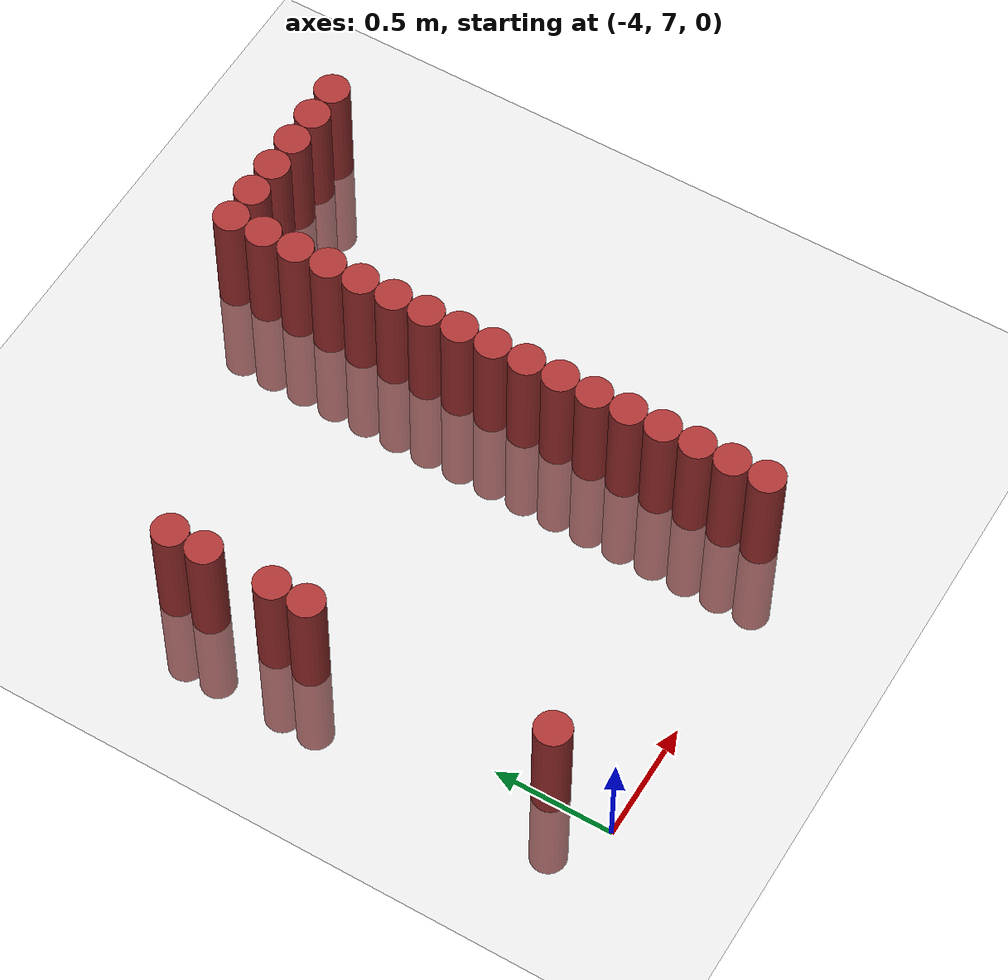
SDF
<sdf version="1.6">
 <world name="default">
  <model name="ground_plane">
   <static>1</static>
   <link name="link">
    <collision name="collision">
     <geometry><plane><normal>0 0 1</normal><size>100 100</size></plane></geometry>
     <surface><friction><ode><mu>100</mu><mu2>50</mu2></ode></friction></surface>
    </collision>
    <visual name="visual">
     <cast_shadows>0</cast_shadows>
     <geometry><plane><normal>0 0 1</normal><size>100 100</size></plane></geometry>
     <material>
      <script><uri>file://media/materials/scripts/gazebo.material</uri><name>Gazebo/Grey</name></script>
     </material>
    </visual>
   </link>
  </model>
  <model name="unit_cylinder_267">
   <static>1</static>
   <pose>-3.975000 7.275000 0.000000 0.000000 0.000000 0.000000</pose>
   <link name="link">
    <inertial>
     <mass>1</mass>
     <inertia><ixx>0.145833</ixx><ixy>0</ixy><ixz>0</ixz><iyy>0.145833</iyy><iyz>0</iyz><izz>0.125</izz></inertia>
    </inertial>
    <collision name="collision">
     <geometry><cylinder><radius>0.075000</radius><length>1</length></cylinder></geometry>
    </collision>
    <visual name="visual">
     <geometry><cylinder><radius>0.075000</radius><length>1</length></cylinder></geometry>
     <material>
      <ambient>0.648000 0.192000 0.192000 1</ambient>
      <diffuse>0.648000 0.192000 0.192000 1</diffuse>
     </material>
     <material>
      <script><name>Gazebo/Grey</name><uri>file://media/materials/scripts/gazebo.material</uri></script>
     </material>
    </visual>
   </link>
  </model>
  <model name="unit_cylinder_268">
   <static>1</static>
   <pose>-3.975000 8.325000 0.000000 0.000000 0.000000 0.000000</pose>
   <link name="link">
    <inertial>
     <mass>1</mass>
     <inertia><ixx>0.145833</ixx><ixy>0</ixy><ixz>0</ixz><iyy>0.145833</iyy><iyz>0</iyz><izz>0.125</izz></inertia>
    </inertial>
    <collision name="collision">
     <geometry><cylinder><radius>0.075000</radius><length>1</length></cylinder></geometry>
    </collision>
    <visual name="visual">
     <geometry><cylinder><radius>0.075000</radius><length>1</length></cylinder></geometry>
     <material>
      <ambient>0.648000 0.192000 0.192000 1</ambient>
      <diffuse>0.648000 0.192000 0.192000 1</diffuse>
     </material>
     <material>
      <script><name>Gazebo/Grey</name><uri>file://media/materials/scripts/gazebo.material</uri></script>
     </material>
    </visual>
   </link>
  </model>
  <model name="unit_cylinder_269">
   <static>1</static>
   <pose>-3.975000 8.475000 0.000000 0.000000 0.000000 0.000000</pose>
   <link name="link">
    <inertial>
     <mass>1</mass>
     <inertia><ixx>0.145833</ixx><ixy>0</ixy><ixz>0</ixz><iyy>0.145833</iyy><iyz>0</iyz><izz>0.125</izz></inertia>
    </inertial>
    <collision name="collision">
     <geometry><cylinder><radius>0.075000</radius><length>1</length></cylinder></geometry>
    </collision>
    <visual name="visual">
     <geometry><cylinder><radius>0.075000</radius><length>1</length></cylinder></geometry>
     <material>
      <ambient>0.648000 0.192000 0.192000 1</ambient>
      <diffuse>0.648000 0.192000 0.192000 1</diffuse>
     </material>
     <material>
      <script><name>Gazebo/Grey</name><uri>file://media/materials/scripts/gazebo.material</uri></script>
     </material>
    </visual>
   </link>
  </model>
  <model name="unit_cylinder_270">
   <static>1</static>
   <pose>-3.975000 8.775000 0.000000 0.000000 0.000000 0.000000</pose>
   <link name="link">
    <inertial>
     <mass>1</mass>
     <inertia><ixx>0.145833</ixx><ixy>0</ixy><ixz>0</ixz><iyy>0.145833</iyy><iyz>0</iyz><izz>0.125</izz></inertia>
    </inertial>
    <collision name="collision">
     <geometry><cylinder><radius>0.075000</radius><length>1</length></cylinder></geometry>
    </collision>
    <visual name="visual">
     <geometry><cylinder><radius>0.075000</radius><length>1</length></cylinder></geometry>
     <material>
      <ambient>0.648000 0.192000 0.192000 1</ambient>
      <diffuse>0.648000 0.192000 0.192000 1</diffuse>
     </material>
     <material>
      <script><name>Gazebo/Grey</name><uri>file://media/materials/scripts/gazebo.material</uri></script>
     </material>
    </visual>
   </link>
  </model>
  <model name="unit_cylinder_271">
   <static>1</static>
   <pose>-3.975000 8.925000 0.000000 0.000000 0.000000 0.000000</pose>
   <link name="link">
    <inertial>
     <mass>1</mass>
     <inertia><ixx>0.145833</ixx><ixy>0</ixy><ixz>0</ixz><iyy>0.145833</iyy><iyz>0</iyz><izz>0.125</izz></inertia>
    </inertial>
    <collision name="collision">
     <geometry><cylinder><radius>0.075000</radius><length>1</length></cylinder></geometry>
    </collision>
    <visual name="visual">
     <geometry><cylinder><radius>0.075000</radius><length>1</length></cylinder></geometry>
     <material>
      <ambient>0.648000 0.192000 0.192000 1</ambient>
      <diffuse>0.648000 0.192000 0.192000 1</diffuse>
     </material>
     <material>
      <script><name>Gazebo/Grey</name><uri>file://media/materials/scripts/gazebo.material</uri></script>
     </material>
    </visual>
   </link>
  </model>
  <model name="unit_cylinder_301">
   <static>1</static>
   <pose>-2.625000 7.125000 0.000000 0.000000 0.000000 0.000000</pose>
   <link name="link">
    <inertial>
     <mass>1</mass>
     <inertia><ixx>0.145833</ixx><ixy>0</ixy><ixz>0</ixz><iyy>0.145833</iyy><iyz>0</iyz><izz>0.125</izz></inertia>
    </inertial>
    <collision name="collision">
     <geometry><cylinder><radius>0.075000</radius><length>1</length></cylinder></geometry>
    </collision>
    <visual name="visual">
     <geometry><cylinder><radius>0.075000</radius><length>1</length></cylinder></geometry>
     <material>
      <ambient>0.648000 0.192000 0.192000 1</ambient>
      <diffuse>0.648000 0.192000 0.192000 1</diffuse>
     </material>
     <material>
      <script><name>Gazebo/Grey</name><uri>file://media/materials/scripts/gazebo.material</uri></script>
     </material>
    </visual>
   </link>
  </model>
  <model name="unit_cylinder_302">
   <static>1</static>
   <pose>-2.625000 7.275000 0.000000 0.000000 0.000000 0.000000</pose>
   <link name="link">
    <inertial>
     <mass>1</mass>
     <inertia><ixx>0.145833</ixx><ixy>0</ixy><ixz>0</ixz><iyy>0.145833</iyy><iyz>0</iyz><izz>0.125</izz></inertia>
    </inertial>
    <collision name="collision">
     <geometry><cylinder><radius>0.075000</radius><length>1</length></cylinder></geometry>
    </collision>
    <visual name="visual">
     <geometry><cylinder><radius>0.075000</radius><length>1</length></cylinder></geometry>
     <material>
      <ambient>0.648000 0.192000 0.192000 1</ambient>
      <diffuse>0.648000 0.192000 0.192000 1</diffuse>
     </material>
     <material>
      <script><name>Gazebo/Grey</name><uri>file://media/materials/scripts/gazebo.material</uri></script>
     </material>
    </visual>
   </link>
  </model>
  <model name="unit_cylinder_303">
   <static>1</static>
   <pose>-2.625000 7.425000 0.000000 0.000000 0.000000 0.000000</pose>
   <link name="link">
    <inertial>
     <mass>1</mass>
     <inertia><ixx>0.145833</ixx><ixy>0</ixy><ixz>0</ixz><iyy>0.145833</iyy><iyz>0</iyz><izz>0.125</izz></inertia>
    </inertial>
    <collision name="collision">
     <geometry><cylinder><radius>0.075000</radius><length>1</length></cylinder></geometry>
    </collision>
    <visual name="visual">
     <geometry><cylinder><radius>0.075000</radius><length>1</length></cylinder></geometry>
     <material>
      <ambient>0.648000 0.192000 0.192000 1</ambient>
      <diffuse>0.648000 0.192000 0.192000 1</diffuse>
     </material>
     <material>
      <script><name>Gazebo/Grey</name><uri>file://media/materials/scripts/gazebo.material</uri></script>
     </material>
    </visual>
   </link>
  </model>
  <model name="unit_cylinder_304">
   <static>1</static>
   <pose>-2.625000 7.575000 0.000000 0.000000 0.000000 0.000000</pose>
   <link name="link">
    <inertial>
     <mass>1</mass>
     <inertia><ixx>0.145833</ixx><ixy>0</ixy><ixz>0</ixz><iyy>0.145833</iyy><iyz>0</iyz><izz>0.125</izz></inertia>
    </inertial>
    <collision name="collision">
     <geometry><cylinder><radius>0.075000</radius><length>1</length></cylinder></geometry>
    </collision>
    <visual name="visual">
     <geometry><cylinder><radius>0.075000</radius><length>1</length></cylinder></geometry>
     <material>
      <ambient>0.648000 0.192000 0.192000 1</ambient>
      <diffuse>0.648000 0.192000 0.192000 1</diffuse>
     </material>
     <material>
      <script><name>Gazebo/Grey</name><uri>file://media/materials/scripts/gazebo.material</uri></script>
     </material>
    </visual>
   </link>
  </model>
  <model name="unit_cylinder_305">
   <static>1</static>
   <pose>-2.625000 7.725000 0.000000 0.000000 0.000000 0.000000</pose>
   <link name="link">
    <inertial>
     <mass>1</mass>
     <inertia><ixx>0.145833</ixx><ixy>0</ixy><ixz>0</ixz><iyy>0.145833</iyy><iyz>0</iyz><izz>0.125</izz></inertia>
    </inertial>
    <collision name="collision">
     <geometry><cylinder><radius>0.075000</radius><length>1</length></cylinder></geometry>
    </collision>
    <visual name="visual">
     <geometry><cylinder><radius>0.075000</radius><length>1</length></cylinder></geometry>
     <material>
      <ambient>0.648000 0.192000 0.192000 1</ambient>
      <diffuse>0.648000 0.192000 0.192000 1</diffuse>
     </material>
     <material>
      <script><name>Gazebo/Grey</name><uri>file://media/materials/scripts/gazebo.material</uri></script>
     </material>
    </visual>
   </link>
  </model>
  <model name="unit_cylinder_306">
   <static>1</static>
   <pose>-2.625000 7.875000 0.000000 0.000000 0.000000 0.000000</pose>
   <link name="link">
    <inertial>
     <mass>1</mass>
     <inertia><ixx>0.145833</ixx><ixy>0</ixy><ixz>0</ixz><iyy>0.145833</iyy><iyz>0</iyz><izz>0.125</izz></inertia>
    </inertial>
    <collision name="collision">
     <geometry><cylinder><radius>0.075000</radius><length>1</length></cylinder></geometry>
    </collision>
    <visual name="visual">
     <geometry><cylinder><radius>0.075000</radius><length>1</length></cylinder></geometry>
     <material>
      <ambient>0.648000 0.192000 0.192000 1</ambient>
      <diffuse>0.648000 0.192000 0.192000 1</diffuse>
     </material>
     <material>
      <script><name>Gazebo/Grey</name><uri>file://media/materials/scripts/gazebo.material</uri></script>
     </material>
    </visual>
   </link>
  </model>
  <model name="unit_cylinder_307">
   <static>1</static>
   <pose>-2.625000 8.025000 0.000000 0.000000 0.000000 0.000000</pose>
   <link name="link">
    <inertial>
     <mass>1</mass>
     <inertia><ixx>0.145833</ixx><ixy>0</ixy><ixz>0</ixz><iyy>0.145833</iyy><iyz>0</iyz><izz>0.125</izz></inertia>
    </inertial>
    <collision name="collision">
     <geometry><cylinder><radius>0.075000</radius><length>1</length></cylinder></geometry>
    </collision>
    <visual name="visual">
     <geometry><cylinder><radius>0.075000</radius><length>1</length></cylinder></geometry>
     <material>
      <ambient>0.648000 0.192000 0.192000 1</ambient>
      <diffuse>0.648000 0.192000 0.192000 1</diffuse>
     </material>
     <material>
      <script><name>Gazebo/Grey</name><uri>file://media/materials/scripts/gazebo.material</uri></script>
     </material>
    </visual>
   </link>
  </model>
  <model name="unit_cylinder_308">
   <static>1</static>
   <pose>-2.625000 8.175000 0.000000 0.000000 0.000000 0.000000</pose>
   <link name="link">
    <inertial>
     <mass>1</mass>
     <inertia><ixx>0.145833</ixx><ixy>0</ixy><ixz>0</ixz><iyy>0.145833</iyy><iyz>0</iyz><izz>0.125</izz></inertia>
    </inertial>
    <collision name="collision">
     <geometry><cylinder><radius>0.075000</radius><length>1</length></cylinder></geometry>
    </collision>
    <visual name="visual">
     <geometry><cylinder><radius>0.075000</radius><length>1</length></cylinder></geometry>
     <material>
      <ambient>0.648000 0.192000 0.192000 1</ambient>
      <diffuse>0.648000 0.192000 0.192000 1</diffuse>
     </material>
     <material>
      <script><name>Gazebo/Grey</name><uri>file://media/materials/scripts/gazebo.material</uri></script>
     </material>
    </visual>
   </link>
  </model>
  <model name="unit_cylinder_309">
   <static>1</static>
   <pose>-2.625000 8.325000 0.000000 0.000000 0.000000 0.000000</pose>
   <link name="link">
    <inertial>
     <mass>1</mass>
     <inertia><ixx>0.145833</ixx><ixy>0</ixy><ixz>0</ixz><iyy>0.145833</iyy><iyz>0</iyz><izz>0.125</izz></inertia>
    </inertial>
    <collision name="collision">
     <geometry><cylinder><radius>0.075000</radius><length>1</length></cylinder></geometry>
    </collision>
    <visual name="visual">
     <geometry><cylinder><radius>0.075000</radius><length>1</length></cylinder></geometry>
     <material>
      <ambient>0.648000 0.192000 0.192000 1</ambient>
      <diffuse>0.648000 0.192000 0.192000 1</diffuse>
     </material>
     <material>
      <script><name>Gazebo/Grey</name><uri>file://media/materials/scripts/gazebo.material</uri></script>
     </material>
    </visual>
   </link>
  </model>
  <model name="unit_cylinder_310">
   <static>1</static>
   <pose>-2.625000 8.475000 0.000000 0.000000 0.000000 0.000000</pose>
   <link name="link">
    <inertial>
     <mass>1</mass>
     <inertia><ixx>0.145833</ixx><ixy>0</ixy><ixz>0</ixz><iyy>0.145833</iyy><iyz>0</iyz><izz>0.125</izz></inertia>
    </inertial>
    <collision name="collision">
     <geometry><cylinder><radius>0.075000</radius><length>1</length></cylinder></geometry>
    </collision>
    <visual name="visual">
     <geometry><cylinder><radius>0.075000</radius><length>1</length></cylinder></geometry>
     <material>
      <ambient>0.648000 0.192000 0.192000 1</ambient>
      <diffuse>0.648000 0.192000 0.192000 1</diffuse>
     </material>
     <material>
      <script><name>Gazebo/Grey</name><uri>file://media/materials/scripts/gazebo.material</uri></script>
     </material>
    </visual>
   </link>
  </model>
  <model name="unit_cylinder_311">
   <static>1</static>
   <pose>-2.625000 8.625000 0.000000 0.000000 0.000000 0.000000</pose>
   <link name="link">
    <inertial>
     <mass>1</mass>
     <inertia><ixx>0.145833</ixx><ixy>0</ixy><ixz>0</ixz><iyy>0.145833</iyy><iyz>0</iyz><izz>0.125</izz></inertia>
    </inertial>
    <collision name="collision">
     <geometry><cylinder><radius>0.075000</radius><length>1</length></cylinder></geometry>
    </collision>
    <visual name="visual">
     <geometry><cylinder><radius>0.075000</radius><length>1</length></cylinder></geometry>
     <material>
      <ambient>0.648000 0.192000 0.192000 1</ambient>
      <diffuse>0.648000 0.192000 0.192000 1</diffuse>
     </material>
     <material>
      <script><name>Gazebo/Grey</name><uri>file://media/materials/scripts/gazebo.material</uri></script>
     </material>
    </visual>
   </link>
  </model>
  <model name="unit_cylinder_312">
   <static>1</static>
   <pose>-2.625000 8.775000 0.000000 0.000000 0.000000 0.000000</pose>
   <link name="link">
    <inertial>
     <mass>1</mass>
     <inertia><ixx>0.145833</ixx><ixy>0</ixy><ixz>0</ixz><iyy>0.145833</iyy><iyz>0</iyz><izz>0.125</izz></inertia>
    </inertial>
    <collision name="collision">
     <geometry><cylinder><radius>0.075000</radius><length>1</length></cylinder></geometry>
    </collision>
    <visual name="visual">
     <geometry><cylinder><radius>0.075000</radius><length>1</length></cylinder></geometry>
     <material>
      <ambient>0.648000 0.192000 0.192000 1</ambient>
      <diffuse>0.648000 0.192000 0.192000 1</diffuse>
     </material>
     <material>
      <script><name>Gazebo/Grey</name><uri>file://media/materials/scripts/gazebo.material</uri></script>
     </material>
    </visual>
   </link>
  </model>
  <model name="unit_cylinder_313">
   <static>1</static>
   <pose>-2.625000 8.925000 0.000000 0.000000 0.000000 0.000000</pose>
   <link name="link">
    <inertial>
     <mass>1</mass>
     <inertia><ixx>0.145833</ixx><ixy>0</ixy><ixz>0</ixz><iyy>0.145833</iyy><iyz>0</iyz><izz>0.125</izz></inertia>
    </inertial>
    <collision name="collision">
     <geometry><cylinder><radius>0.075000</radius><length>1</length></cylinder></geometry>
    </collision>
    <visual name="visual">
     <geometry><cylinder><radius>0.075000</radius><length>1</length></cylinder></geometry>
     <material>
      <ambient>0.648000 0.192000 0.192000 1</ambient>
      <diffuse>0.648000 0.192000 0.192000 1</diffuse>
     </material>
     <material>
      <script><name>Gazebo/Grey</name><uri>file://media/materials/scripts/gazebo.material</uri></script>
     </material>
    </visual>
   </link>
  </model>
  <model name="unit_cylinder_314">
   <static>1</static>
   <pose>-2.625000 9.075000 0.000000 0.000000 0.000000 0.000000</pose>
   <link name="link">
    <inertial>
     <mass>1</mass>
     <inertia><ixx>0.145833</ixx><ixy>0</ixy><ixz>0</ixz><iyy>0.145833</iyy><iyz>0</iyz><izz>0.125</izz></inertia>
    </inertial>
    <collision name="collision">
     <geometry><cylinder><radius>0.075000</radius><length>1</length></cylinder></geometry>
    </collision>
    <visual name="visual">
     <geometry><cylinder><radius>0.075000</radius><length>1</length></cylinder></geometry>
     <material>
      <ambient>0.648000 0.192000 0.192000 1</ambient>
      <diffuse>0.648000 0.192000 0.192000 1</diffuse>
     </material>
     <material>
      <script><name>Gazebo/Grey</name><uri>file://media/materials/scripts/gazebo.material</uri></script>
     </material>
    </visual>
   </link>
  </model>
  <model name="unit_cylinder_315">
   <static>1</static>
   <pose>-2.625000 9.225000 0.000000 0.000000 0.000000 0.000000</pose>
   <link name="link">
    <inertial>
     <mass>1</mass>
     <inertia><ixx>0.145833</ixx><ixy>0</ixy><ixz>0</ixz><iyy>0.145833</iyy><iyz>0</iyz><izz>0.125</izz></inertia>
    </inertial>
    <collision name="collision">
     <geometry><cylinder><radius>0.075000</radius><length>1</length></cylinder></geometry>
    </collision>
    <visual name="visual">
     <geometry><cylinder><radius>0.075000</radius><length>1</length></cylinder></geometry>
     <material>
      <ambient>0.648000 0.192000 0.192000 1</ambient>
      <diffuse>0.648000 0.192000 0.192000 1</diffuse>
     </material>
     <material>
      <script><name>Gazebo/Grey</name><uri>file://media/materials/scripts/gazebo.material</uri></script>
     </material>
    </visual>
   </link>
  </model>
  <model name="unit_cylinder_316">
   <static>1</static>
   <pose>-2.625000 9.375000 0.000000 0.000000 0.000000 0.000000</pose>
   <link name="link">
    <inertial>
     <mass>1</mass>
     <inertia><ixx>0.145833</ixx><ixy>0</ixy><ixz>0</ixz><iyy>0.145833</iyy><iyz>0</iyz><izz>0.125</izz></inertia>
    </inertial>
    <collision name="collision">
     <geometry><cylinder><radius>0.075000</radius><length>1</length></cylinder></geometry>
    </collision>
    <visual name="visual">
     <geometry><cylinder><radius>0.075000</radius><length>1</length></cylinder></geometry>
     <material>
      <ambient>0.648000 0.192000 0.192000 1</ambient>
      <diffuse>0.648000 0.192000 0.192000 1</diffuse>
     </material>
     <material>
      <script><name>Gazebo/Grey</name><uri>file://media/materials/scripts/gazebo.material</uri></script>
     </material>
    </visual>
   </link>
  </model>
  <model name="unit_cylinder_317">
   <static>1</static>
   <pose>-2.625000 9.525000 0.000000 0.000000 0.000000 0.000000</pose>
   <link name="link">
    <inertial>
     <mass>1</mass>
     <inertia><ixx>0.145833</ixx><ixy>0</ixy><ixz>0</ixz><iyy>0.145833</iyy><iyz>0</iyz><izz>0.125</izz></inertia>
    </inertial>
    <collision name="collision">
     <geometry><cylinder><radius>0.075000</radius><length>1</length></cylinder></geometry>
    </collision>
    <visual name="visual">
     <geometry><cylinder><radius>0.075000</radius><length>1</length></cylinder></geometry>
     <material>
      <ambient>0.648000 0.192000 0.192000 1</ambient>
      <diffuse>0.648000 0.192000 0.192000 1</diffuse>
     </material>
     <material>
      <script><name>Gazebo/Grey</name><uri>file://media/materials/scripts/gazebo.material</uri></script>
     </material>
    </visual>
   </link>
  </model>
  <model name="unit_cylinder_319">
   <static>1</static>
   <pose>-2.475000 9.525000 0.000000 0.000000 0.000000 0.000000</pose>
   <link name="link">
    <inertial>
     <mass>1</mass>
     <inertia><ixx>0.145833</ixx><ixy>0</ixy><ixz>0</ixz><iyy>0.145833</iyy><iyz>0</iyz><izz>0.125</izz></inertia>
    </inertial>
    <collision name="collision">
     <geometry><cylinder><radius>0.075000</radius><length>1</length></cylinder></geometry>
    </collision>
    <visual name="visual">
     <geometry><cylinder><radius>0.075000</radius><length>1</length></cylinder></geometry>
     <material>
      <ambient>0.648000 0.192000 0.192000 1</ambient>
      <diffuse>0.648000 0.192000 0.192000 1</diffuse>
     </material>
     <material>
      <script><name>Gazebo/Grey</name><uri>file://media/materials/scripts/gazebo.material</uri></script>
     </material>
    </visual>
   </link>
  </model>
  <model name="unit_cylinder_321">
   <static>1</static>
   <pose>-2.325000 9.525000 0.000000 0.000000 0.000000 0.000000</pose>
   <link name="link">
    <inertial>
     <mass>1</mass>
     <inertia><ixx>0.145833</ixx><ixy>0</ixy><ixz>0</ixz><iyy>0.145833</iyy><iyz>0</iyz><izz>0.125</izz></inertia>
    </inertial>
    <collision name="collision">
     <geometry><cylinder><radius>0.075000</radius><length>1</length></cylinder></geometry>
    </collision>
    <visual name="visual">
     <geometry><cylinder><radius>0.075000</radius><length>1</length></cylinder></geometry>
     <material>
      <ambient>0.648000 0.192000 0.192000 1</ambient>
      <diffuse>0.648000 0.192000 0.192000 1</diffuse>
     </material>
     <material>
      <script><name>Gazebo/Grey</name><uri>file://media/materials/scripts/gazebo.material</uri></script>
     </material>
    </visual>
   </link>
  </model>
  <model name="unit_cylinder_323">
   <static>1</static>
   <pose>-2.175000 9.525000 0.000000 0.000000 0.000000 0.000000</pose>
   <link name="link">
    <inertial>
     <mass>1</mass>
     <inertia><ixx>0.145833</ixx><ixy>0</ixy><ixz>0</ixz><iyy>0.145833</iyy><iyz>0</iyz><izz>0.125</izz></inertia>
    </inertial>
    <collision name="collision">
     <geometry><cylinder><radius>0.075000</radius><length>1</length></cylinder></geometry>
    </collision>
    <visual name="visual">
     <geometry><cylinder><radius>0.075000</radius><length>1</length></cylinder></geometry>
     <material>
      <ambient>0.648000 0.192000 0.192000 1</ambient>
      <diffuse>0.648000 0.192000 0.192000 1</diffuse>
     </material>
     <material>
      <script><name>Gazebo/Grey</name><uri>file://media/materials/scripts/gazebo.material</uri></script>
     </material>
    </visual>
   </link>
  </model>
  <model name="unit_cylinder_325">
   <static>1</static>
   <pose>-2.025000 9.525000 0.000000 0.000000 0.000000 0.000000</pose>
   <link name="link">
    <inertial>
     <mass>1</mass>
     <inertia><ixx>0.145833</ixx><ixy>0</ixy><ixz>0</ixz><iyy>0.145833</iyy><iyz>0</iyz><izz>0.125</izz></inertia>
    </inertial>
    <collision name="collision">
     <geometry><cylinder><radius>0.075000</radius><length>1</length></cylinder></geometry>
    </collision>
    <visual name="visual">
     <geometry><cylinder><radius>0.075000</radius><length>1</length></cylinder></geometry>
     <material>
      <ambient>0.648000 0.192000 0.192000 1</ambient>
      <diffuse>0.648000 0.192000 0.192000 1</diffuse>
     </material>
     <material>
      <script><name>Gazebo/Grey</name><uri>file://media/materials/scripts/gazebo.material</uri></script>
     </material>
    </visual>
   </link>
  </model>
  <model name="unit_cylinder_327">
   <static>1</static>
   <pose>-1.875000 9.525000 0.000000 0.000000 0.000000 0.000000</pose>
   <link name="link">
    <inertial>
     <mass>1</mass>
     <inertia><ixx>0.145833</ixx><ixy>0</ixy><ixz>0</ixz><iyy>0.145833</iyy><iyz>0</iyz><izz>0.125</izz></inertia>
    </inertial>
    <collision name="collision">
     <geometry><cylinder><radius>0.075000</radius><length>1</length></cylinder></geometry>
    </collision>
    <visual name="visual">
     <geometry><cylinder><radius>0.075000</radius><length>1</length></cylinder></geometry>
     <material>
      <ambient>0.648000 0.192000 0.192000 1</ambient>
      <diffuse>0.648000 0.192000 0.192000 1</diffuse>
     </material>
     <material>
      <script><name>Gazebo/Grey</name><uri>file://media/materials/scripts/gazebo.material</uri></script>
     </material>
    </visual>
   </link>
  </model>
 </world>
</sdf>
